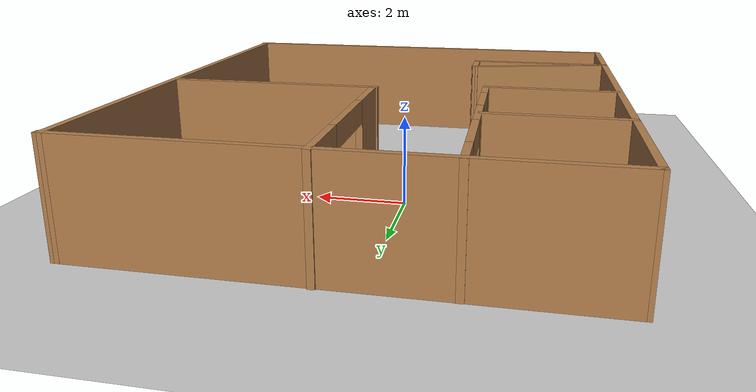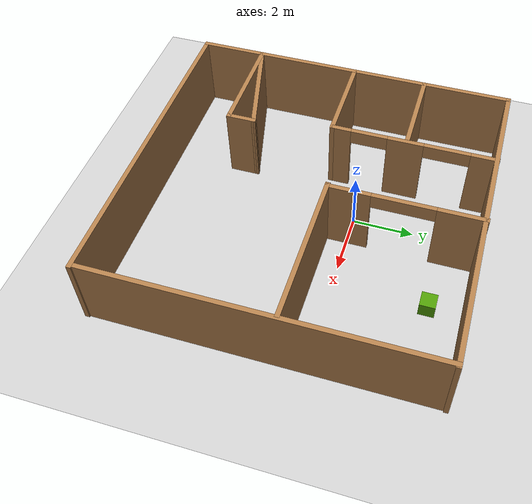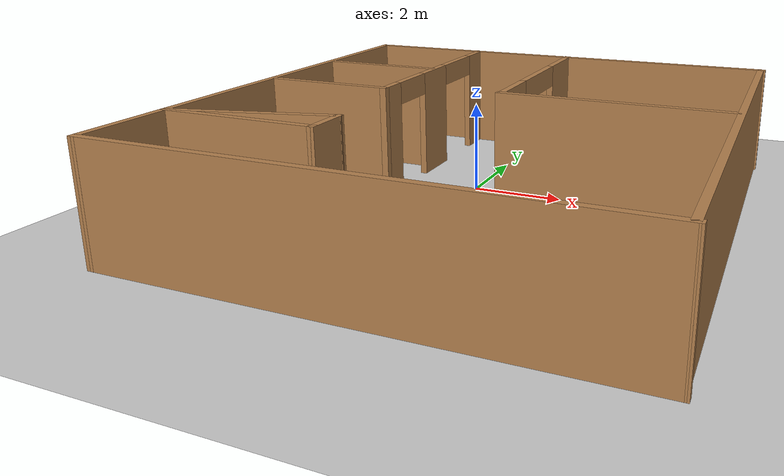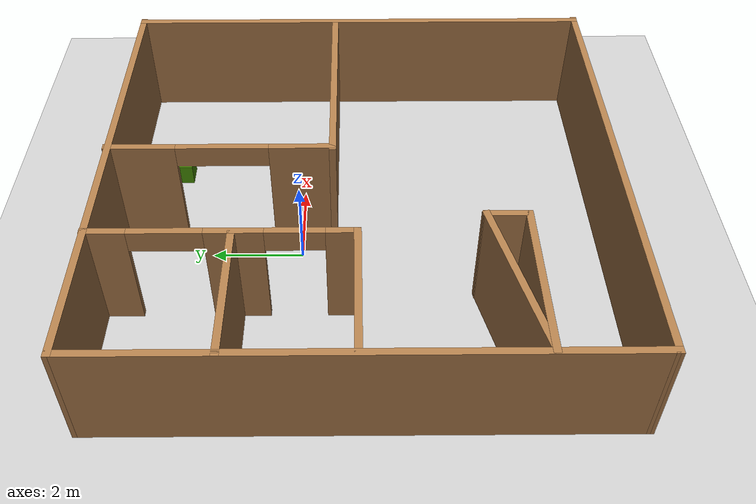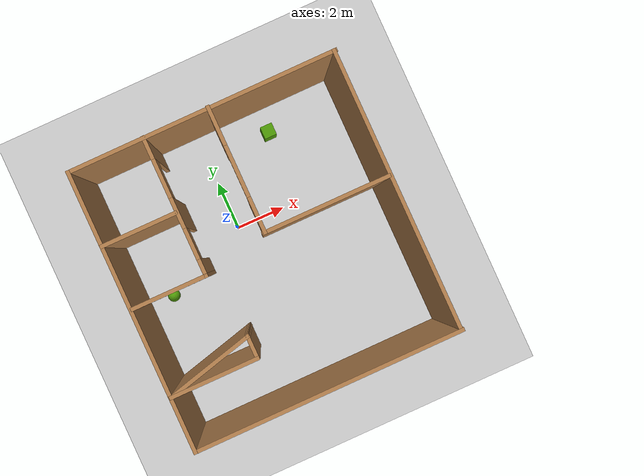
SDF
<sdf version="1.4">
 <world name="default">
  <include><uri>model://model://ground_plane</uri></include>
  <include><uri>model://model://sun</uri></include>
  <scene><ambient>0.0 0.0 0.0 1.0</ambient><shadows>0</shadows></scene>
  <light type="point_light" name="light1"><pose>0 0 4.5 0 0 0</pose></light>
  <plugin name="octomap_plugin" filename="libOctomapWorldPlugin.so">
   <octomapResolution>0.05</octomapResolution>
   <frameName>world</frameName>
   <occupancyThreshold>0.7</occupancyThreshold>
   <maxRange>5.0</maxRange>
  </plugin>
  <include><name>mir_world</name><uri>model://model:://mir_world</uri></include>
  <include><name>box</name><uri>model://model:://box</uri><pose>2.7 3 0.25 0 0 0</pose></include>
  <include><name>sphere</name><uri>model://model:://sphere</uri><pose>-3.48 -1.42 0.25 0 0 0</pose></include>
 </world>
</sdf>

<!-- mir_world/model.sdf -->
<sdf version='1.7'>
  <model name='mir_world'>
    <pose>0.600766 -1.30307 0 0 -0 0</pose>
    <link name='Wall_13'>
      <collision name='Wall_13_Collision'>
        <geometry>
          <box>
            <size>3 0.15 2.5</size>
          </box>
        </geometry>
        <pose>0 0 1.25 0 -0 0</pose>
      </collision>
      <visual name='Wall_13_Visual'>
        <pose>0 0 1.25 0 -0 0</pose>
        <geometry>
          <box>
            <size>3 0.15 2.5</size>
          </box>
        </geometry>
        <material>
          <script>
            <uri>file://media/materials/scripts/gazebo.material</uri>
            <name>Gazebo/Wood</name>
          </script>
          <ambient>1 1 1 1</ambient>
        </material>
        <meta>
          <layer>0</layer>
        </meta>
      </visual>
      <pose>-3.75991 2.53236 0 0 -0 0</pose>
    </link>
    <link name='Wall_15'>
      <pose>-2.26407 2.74322 0 0 -0 -1.5708</pose>
      <visual name='Wall_15_Visual_0'>
        <pose>-2.29575 0 1.25 0 -0 0</pose>
        <geometry>
          <box>
            <size>0.908503 0.15 2.5</size>
          </box>
        </geometry>
        <material>
          <script>
            <uri>file://media/materials/scripts/gazebo.material</uri>
            <name>Gazebo/Wood</name>
          </script>
          <ambient>1 1 1 1</ambient>
        </material>
        <meta>
          <layer>0</layer>
        </meta>
      </visual>
      <collision name='Wall_15_Collision_0'>
        <geometry>
          <box>
            <size>0.908503 0.15 2.5</size>
          </box>
        </geometry>
        <pose>-2.29575 0 1.25 0 -0 0</pose>
      </collision>
      <visual name='Wall_15_Visual_1'>
        <pose>0.250658 0 1.25 0 -0 0</pose>
        <geometry>
          <box>
            <size>1.18431 0.15 2.5</size>
          </box>
        </geometry>
        <material>
          <script>
            <uri>file://media/materials/scripts/gazebo.material</uri>
            <name>Gazebo/Wood</name>
          </script>
          <ambient>1 1 1 1</ambient>
        </material>
        <meta>
          <layer>0</layer>
        </meta>
      </visual>
      <collision name='Wall_15_Collision_1'>
        <geometry>
          <box>
            <size>1.18431 0.15 2.5</size>
          </box>
        </geometry>
        <pose>0.250658 0 1.25 0 -0 0</pose>
      </collision>
      <visual name='Wall_15_Visual_2'>
        <pose>2.39641 0 1.25 0 -0 0</pose>
        <geometry>
          <box>
            <size>0.707187 0.15 2.5</size>
          </box>
        </geometry>
        <material>
          <script>
            <uri>file://media/materials/scripts/gazebo.material</uri>
            <name>Gazebo/Wood</name>
          </script>
          <ambient>1 1 1 1</ambient>
        </material>
        <meta>
          <layer>0</layer>
        </meta>
      </visual>
      <collision name='Wall_15_Collision_2'>
        <geometry>
          <box>
            <size>0.707187 0.15 2.5</size>
          </box>
        </geometry>
        <pose>2.39641 0 1.25 0 -0 0</pose>
      </collision>
      <visual name='Wall_15_Visual_3'>
        <pose>-1.0915 0 2.25 0 -0 0</pose>
        <geometry>
          <box>
            <size>1.5 0.15 0.5</size>
          </box>
        </geometry>
        <material>
          <script>
            <uri>file://media/materials/scripts/gazebo.material</uri>
            <name>Gazebo/Wood</name>
          </script>
          <ambient>1 1 1 1</ambient>
        </material>
        <meta>
          <layer>0</layer>
        </meta>
      </visual>
      <collision name='Wall_15_Collision_3'>
        <geometry>
          <box>
            <size>1.5 0.15 0.5</size>
          </box>
        </geometry>
        <pose>-1.0915 0 2.25 0 -0 0</pose>
      </collision>
      <visual name='Wall_15_Visual_4'>
        <pose>1.44281 0 2.25 0 -0 0</pose>
        <geometry>
          <box>
            <size>1.2 0.15 0.5</size>
          </box>
        </geometry>
        <material>
          <script>
            <uri>file://media/materials/scripts/gazebo.material</uri>
            <name>Gazebo/Wood</name>
          </script>
          <ambient>1 1 1 1</ambient>
        </material>
        <meta>
          <layer>0</layer>
        </meta>
      </visual>
      <collision name='Wall_15_Collision_4'>
        <geometry>
          <box>
            <size>1.2 0.15 0.5</size>
          </box>
        </geometry>
        <pose>1.44281 0 2.25 0 -0 0</pose>
      </collision>
    </link>
    <link name='Wall_16'>
      <collision name='Wall_16_Collision'>
        <geometry>
          <box>
            <size>3 0.15 2.5</size>
          </box>
        </geometry>
        <pose>0 0 1.25 0 -0 0</pose>
      </collision>
      <visual name='Wall_16_Visual'>
        <pose>0 0 1.25 0 -0 0</pose>
        <geometry>
          <box>
            <size>3 0.15 2.5</size>
          </box>
        </geometry>
        <material>
          <script>
            <uri>file://media/materials/scripts/gazebo.material</uri>
            <name>Gazebo/Wood</name>
          </script>
          <ambient>1 1 1 1</ambient>
        </material>
        <meta>
          <layer>0</layer>
        </meta>
      </visual>
      <pose>-3.68907 0.068225 0 0 -0 3.14159</pose>
    </link>
    <link name='Wall_18'>
      <collision name='Wall_18_Collision'>
        <geometry>
          <box>
            <size>3.5 0.15 2.5</size>
          </box>
        </geometry>
        <pose>0 0 1.25 0 -0 0</pose>
      </collision>
      <visual name='Wall_18_Visual'>
        <pose>0 0 1.25 0 -0 0</pose>
        <geometry>
          <box>
            <size>3.5 0.15 2.5</size>
          </box>
        </geometry>
        <material>
          <script>
            <uri>file://media/materials/scripts/gazebo.material</uri>
            <name>Gazebo/Wood</name>
          </script>
          <ambient>1 1 1 1</ambient>
        </material>
        <meta>
          <layer>0</layer>
        </meta>
      </visual>
      <pose>-3.49178 -3.34165 0 0 -0 0</pose>
    </link>
    <link name='Wall_19'>
      <collision name='Wall_19_Collision'>
        <geometry>
          <box>
            <size>1 0.15 2.5</size>
          </box>
        </geometry>
        <pose>0 0 1.25 0 -0 0</pose>
      </collision>
      <visual name='Wall_19_Visual'>
        <pose>0 0 1.25 0 -0 0</pose>
        <geometry>
          <box>
            <size>1 0.15 2.5</size>
          </box>
        </geometry>
        <material>
          <script>
            <uri>file://media/materials/scripts/gazebo.material</uri>
            <name>Gazebo/Wood</name>
          </script>
          <ambient>1 1 1 1</ambient>
        </material>
        <meta>
          <layer>0</layer>
        </meta>
      </visual>
      <pose>-1.81678 -2.91665 0 0 -0 1.5708</pose>
    </link>
    <link name='Wall_2'>
      <collision name='Wall_2_Collision'>
        <geometry>
          <box>
            <size>11 0.15 2.5</size>
          </box>
        </geometry>
        <pose>0 0 1.25 0 -0 0</pose>
      </collision>
      <visual name='Wall_2_Visual'>
        <pose>0 0 1.25 0 -0 0</pose>
        <geometry>
          <box>
            <size>11 0.15 2.5</size>
          </box>
        </geometry>
        <material>
          <script>
            <uri>file://media/materials/scripts/gazebo.material</uri>
            <name>Gazebo/Wood</name>
          </script>
          <ambient>1 1 1 1</ambient>
        </material>
        <meta>
          <layer>0</layer>
        </meta>
      </visual>
      <pose>-5.18932 -0.022833 0 0 -0 -1.5708</pose>
    </link>
    <link name='Wall_20'>
      <collision name='Wall_20_Collision'>
        <geometry>
          <box>
            <size>3.60615 0.15 2.5</size>
          </box>
        </geometry>
        <pose>0 0 1.25 0 -0 0</pose>
      </collision>
      <visual name='Wall_20_Visual'>
        <pose>0 0 1.25 0 -0 0</pose>
        <geometry>
          <box>
            <size>3.60615 0.15 2.5</size>
          </box>
        </geometry>
        <material>
          <script>
            <uri>file://media/materials/scripts/gazebo.material</uri>
            <name>Gazebo/Wood</name>
          </script>
          <ambient>1 1 1 1</ambient>
        </material>
        <meta>
          <layer>0</layer>
        </meta>
      </visual>
      <pose>-3.49178 -2.91665 0 0 -0 -2.8931</pose>
    </link>
    <link name='Wall_23'>
      <pose>0.263882 3.02298 0 0 -0 -1.5708</pose>
      <visual name='Wall_23_Visual_0'>
        <pose>-1.72343 0 1.25 0 -0 0</pose>
        <geometry>
          <box>
            <size>1.55314 0.15 2.5</size>
          </box>
        </geometry>
        <material>
          <script>
            <uri>file://media/materials/scripts/gazebo.material</uri>
            <name>Gazebo/Wood</name>
          </script>
          <ambient>1 1 1 1</ambient>
        </material>
        <meta>
          <layer>0</layer>
        </meta>
      </visual>
      <collision name='Wall_23_Collision_0'>
        <geometry>
          <box>
            <size>1.55314 0.15 2.5</size>
          </box>
        </geometry>
        <pose>-1.72343 0 1.25 0 -0 0</pose>
      </collision>
      <visual name='Wall_23_Visual_1'>
        <pose>1.77657 0 1.25 0 -0 0</pose>
        <geometry>
          <box>
            <size>1.44686 0.15 2.5</size>
          </box>
        </geometry>
        <material>
          <script>
            <uri>file://media/materials/scripts/gazebo.material</uri>
            <name>Gazebo/Wood</name>
          </script>
          <ambient>1 1 1 1</ambient>
        </material>
        <meta>
          <layer>0</layer>
        </meta>
      </visual>
      <collision name='Wall_23_Collision_1'>
        <geometry>
          <box>
            <size>1.44686 0.15 2.5</size>
          </box>
        </geometry>
        <pose>1.77657 0 1.25 0 -0 0</pose>
      </collision>
      <visual name='Wall_23_Visual_2'>
        <pose>0.053139 0 2.25 0 -0 0</pose>
        <geometry>
          <box>
            <size>2 0.15 0.5</size>
          </box>
        </geometry>
        <material>
          <script>
            <uri>file://media/materials/scripts/gazebo.material</uri>
            <name>Gazebo/Wood</name>
          </script>
          <ambient>1 1 1 1</ambient>
        </material>
        <meta>
          <layer>0</layer>
        </meta>
      </visual>
      <collision name='Wall_23_Collision_2'>
        <geometry>
          <box>
            <size>2 0.15 0.5</size>
          </box>
        </geometry>
        <pose>0.053139 0 2.25 0 -0 0</pose>
      </collision>
    </link>
    <link name='Wall_24'>
      <collision name='Wall_24_Collision'>
        <geometry>
          <box>
            <size>5 0.15 2.5</size>
          </box>
        </geometry>
        <pose>0 0 1.25 0 -0 0</pose>
      </collision>
      <visual name='Wall_24_Visual'>
        <pose>0 0 1.25 0 -0 0</pose>
        <geometry>
          <box>
            <size>5 0.15 2.5</size>
          </box>
        </geometry>
        <material>
          <script>
            <uri>file://media/materials/scripts/gazebo.material</uri>
            <name>Gazebo/Wood</name>
          </script>
          <ambient>1 1 1 1</ambient>
        </material>
        <meta>
          <layer>0</layer>
        </meta>
      </visual>
      <pose>2.64866 0.597978 0 0 -0 0</pose>
    </link>
    <link name='Wall_3'>
      <collision name='Wall_3_Collision'>
        <geometry>
          <box>
            <size>10.5287 0.15 2.5</size>
          </box>
        </geometry>
        <pose>0 0 1.25 0 -0 0</pose>
      </collision>
      <visual name='Wall_3_Visual'>
        <pose>0 0 1.25 0 -0 0</pose>
        <geometry>
          <box>
            <size>10.5287 0.15 2.5</size>
          </box>
        </geometry>
        <material>
          <script>
            <uri>file://media/materials/scripts/gazebo.material</uri>
            <name>Gazebo/Wood</name>
          </script>
          <ambient>1 1 1 1</ambient>
        </material>
        <meta>
          <layer>0</layer>
        </meta>
      </visual>
      <pose>0 -5.43778 0 0 -0 0.001938</pose>
    </link>
    <link name='Wall_4'>
      <collision name='Wall_4_Collision'>
        <geometry>
          <box>
            <size>11 0.15 2.5</size>
          </box>
        </geometry>
        <pose>0 0 1.25 0 -0 0</pose>
      </collision>
      <visual name='Wall_4_Visual'>
        <pose>0 0 1.25 0 -0 0</pose>
        <geometry>
          <box>
            <size>11 0.15 2.5</size>
          </box>
        </geometry>
        <material>
          <script>
            <uri>file://media/materials/scripts/gazebo.material</uri>
            <name>Gazebo/Wood</name>
          </script>
          <ambient>1 1 1 1</ambient>
        </material>
        <meta>
          <layer>0</layer>
        </meta>
      </visual>
      <pose>5.14909 -0.002719 0 0 -0 1.5708</pose>
    </link>
    <link name='Wall_5'>
      <collision name='Wall_5_Collision'>
        <geometry>
          <box>
            <size>10.5287 0.15 2.5</size>
          </box>
        </geometry>
        <pose>0 0 1.25 0 -0 0</pose>
      </collision>
      <visual name='Wall_5_Visual'>
        <pose>0 0 1.25 0 -0 0</pose>
        <geometry>
          <box>
            <size>10.5287 0.15 2.5</size>
          </box>
        </geometry>
        <material>
          <script>
            <uri>file://media/materials/scripts/gazebo.material</uri>
            <name>Gazebo/Wood</name>
          </script>
          <ambient>1 1 1 1</ambient>
        </material>
        <meta>
          <layer>0</layer>
        </meta>
      </visual>
      <pose>0 5.41222 0 0 -0 -3.13965</pose>
    </link>
    <static>1</static>
  </model>
</sdf>

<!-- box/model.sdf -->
<sdf version='1.6'>
  <model name='box'>
    <link name='link_0'>
      <inertial>
        <mass>1</mass>
        <inertia>
          <ixx>0.166667</ixx>
          <ixy>0</ixy>
          <ixz>0</ixz>
          <iyy>0.166667</iyy>
          <iyz>0</iyz>
          <izz>0.166667</izz>
        </inertia>
        <pose frame=''>0 0 0 0 -0 0</pose>
      </inertial>
      <pose frame=''>0 -0 0 0 -0 0</pose>
      <gravity>1</gravity>
      <self_collide>0</self_collide>
      <kinematic>0</kinematic>
      <enable_wind>0</enable_wind>
      <visual name='visual'>
        <pose frame=''>0 0 0 0 -0 0</pose>
        <geometry>
          <box>
            <size>0.5 0.5 0.5</size>
          </box>
        </geometry>
        <material>
          <lighting>1</lighting>
          <script>
            <uri>file://media/materials/scripts/gazebo.material</uri>
            <name>Gazebo/Grey</name>
          </script>
          <shader type='vertex'>
            <normal_map>__default__</normal_map>
          </shader>
          <ambient>0.306 0.604 0.024 1</ambient>
          <diffuse>0.306 0.604 0.024 1</diffuse>
          <specular>0.306 0.604 0.024 1</specular>
          <emissive>0.306 0.604 0.024 1</emissive>
        </material>
        <transparency>0</transparency>
        <cast_shadows>1</cast_shadows>
      </visual>
      <collision name='collision'>
        <pose frame=''>0 0 0 0 -0 0</pose>
        <geometry>
          <box>
            <size>0.5 0.5 0.5</size>
          </box>
        </geometry>
        <material>
          <lighting>1</lighting>
          <script>
            <uri>file://media/materials/scripts/gazebo.material</uri>
            <name>Gazebo/Grey</name>
          </script>
          <shader type='vertex'>
            <normal_map>__default__</normal_map>
          </shader>
          <ambient>0.306 0.604 0.024 1</ambient>
          <diffuse>0.306 0.604 0.024 1</diffuse>
          <specular>0.306 0.604 0.024 1</specular>
          <emissive>0.306 0.604 0.024 1</emissive>
        </material>
        <transparency>0</transparency>
        <cast_shadows>1</cast_shadows>
      </collision>
    </link>
    <static>0</static>
    <allow_auto_disable>1</allow_auto_disable>
  </model>
</sdf>

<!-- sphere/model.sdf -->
<sdf version='1.6'>
  <model name='sphere'>
    <link name='link_0'>
      <inertial>
        <mass>1</mass>
        <inertia>
          <ixx>0.166667</ixx>
          <ixy>0</ixy>
          <ixz>0</ixz>
          <iyy>0.166667</iyy>
          <iyz>0</iyz>
          <izz>0.166667</izz>
        </inertia>
        <pose frame=''>0 0 0 0 -0 0</pose>
      </inertial>
      <pose frame=''>0 -0 0 0 -0 0</pose>
      <gravity>1</gravity>
      <self_collide>0</self_collide>
      <kinematic>0</kinematic>
      <enable_wind>0</enable_wind>
      <visual name='visual'>
        <pose frame=''>0 0 0 0 -0 0</pose>
        <geometry>
          <sphere>
            <radius>0.25</radius>
          </sphere>
        </geometry>
        <material>
          <lighting>1</lighting>
          <script>
            <uri>file://media/materials/scripts/gazebo.material</uri>
            <name>Gazebo/Grey</name>
          </script>
          <shader type='vertex'>
            <normal_map>__default__</normal_map>
          </shader>
          <ambient>0.306 0.604 0.024 1</ambient>
          <diffuse>0.306 0.604 0.024 1</diffuse>
          <specular>0.306 0.604 0.024 1</specular>
          <emissive>0.306 0.604 0.024 1</emissive>
        </material>
        <transparency>0</transparency>
        <cast_shadows>1</cast_shadows>
      </visual>
      <collision name='collision'>
        <pose frame=''>0 0 0 0 -0 0</pose>
        <geometry>
          <sphere>
            <radius>0.25</radius>
          </sphere>
        </geometry>
        <material>
          <lighting>1</lighting>
          <script>
            <uri>file://media/materials/scripts/gazebo.material</uri>
            <name>Gazebo/Grey</name>
          </script>
          <shader type='vertex'>
            <normal_map>__default__</normal_map>
          </shader>
          <ambient>0.306 0.604 0.024 1</ambient>
          <diffuse>0.306 0.604 0.024 1</diffuse>
          <specular>0.306 0.604 0.024 1</specular>
          <emissive>0.306 0.604 0.024 1</emissive>
        </material>
        <transparency>0</transparency>
        <cast_shadows>1</cast_shadows>
      </collision>
    </link>
    <static>0</static>
    <allow_auto_disable>1</allow_auto_disable>
  </model>
</sdf>
